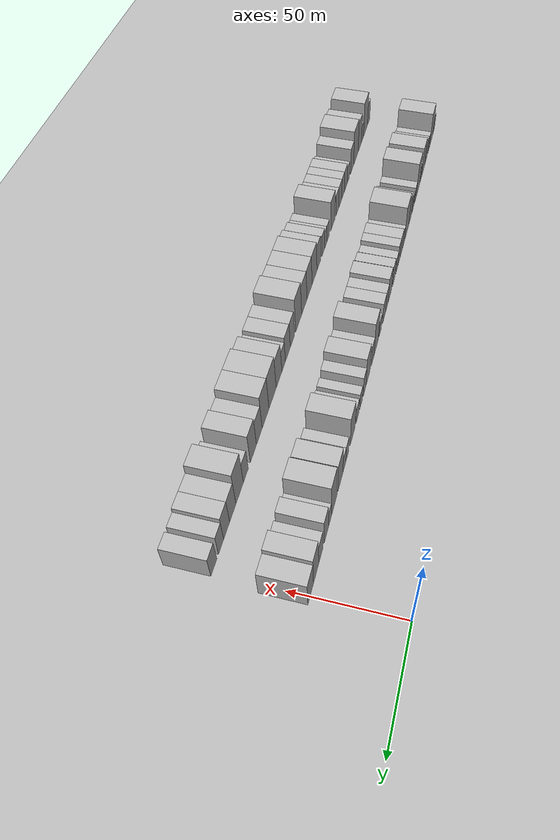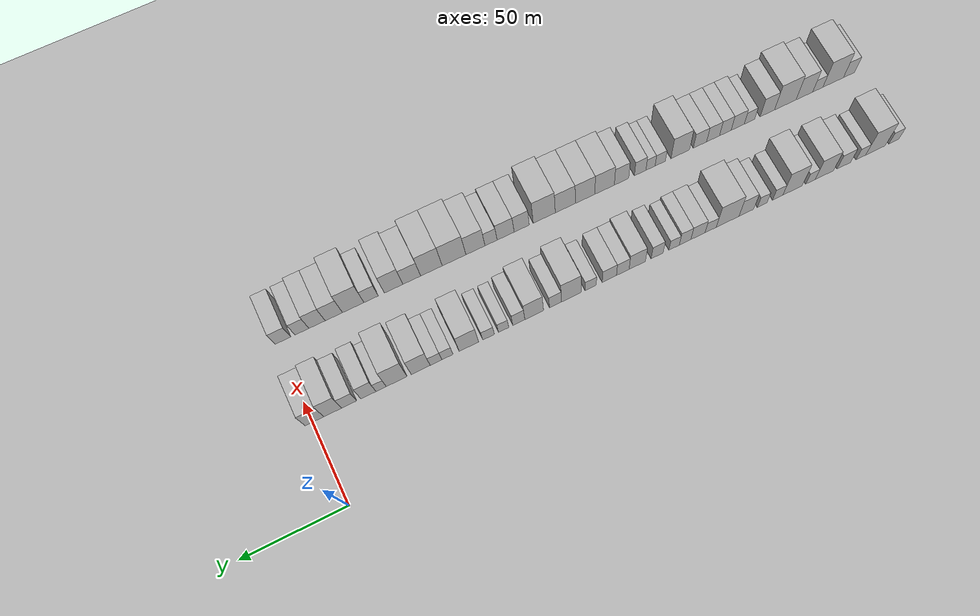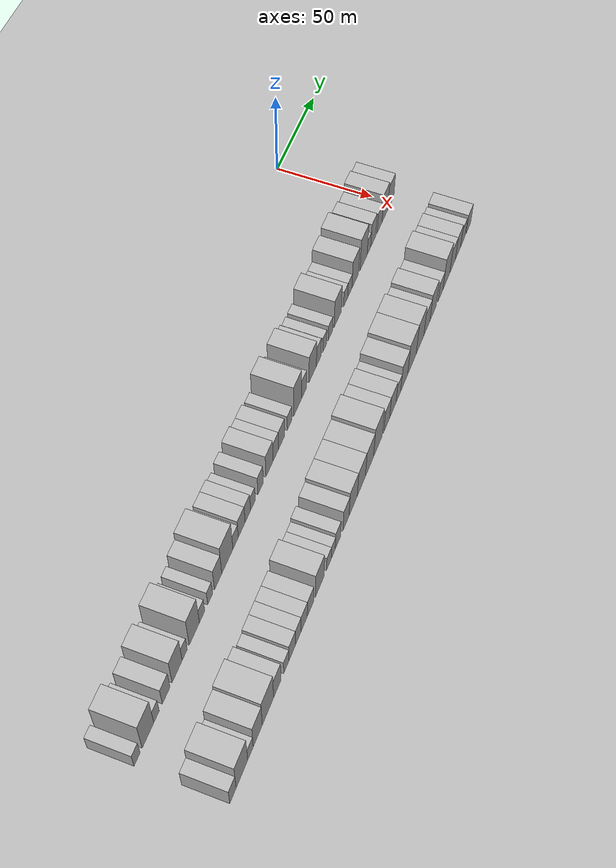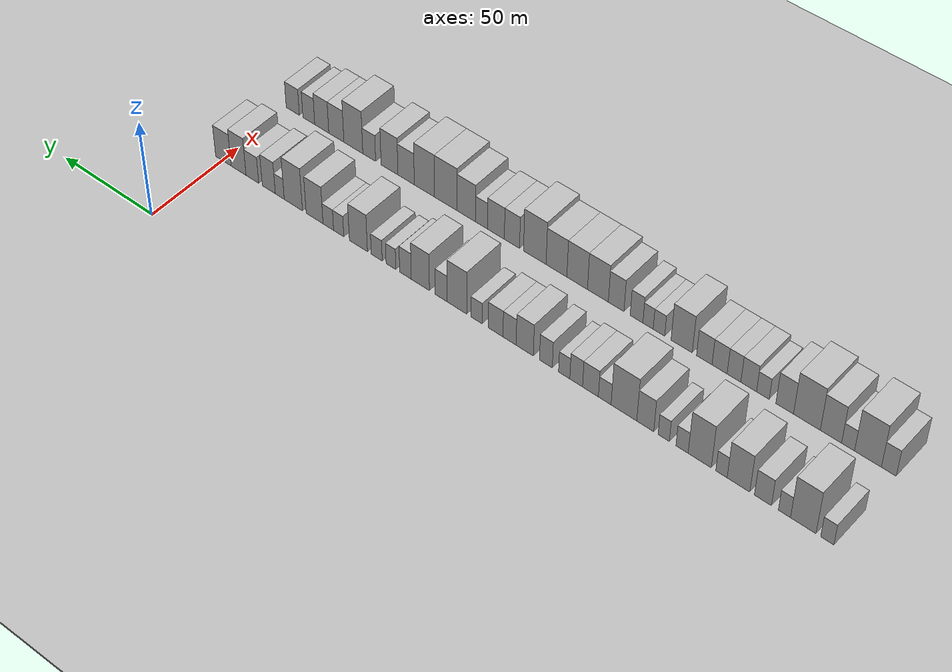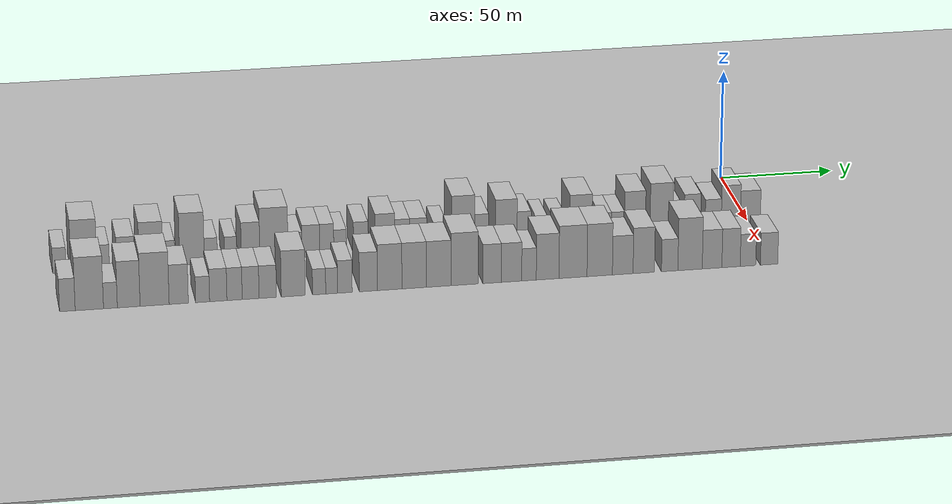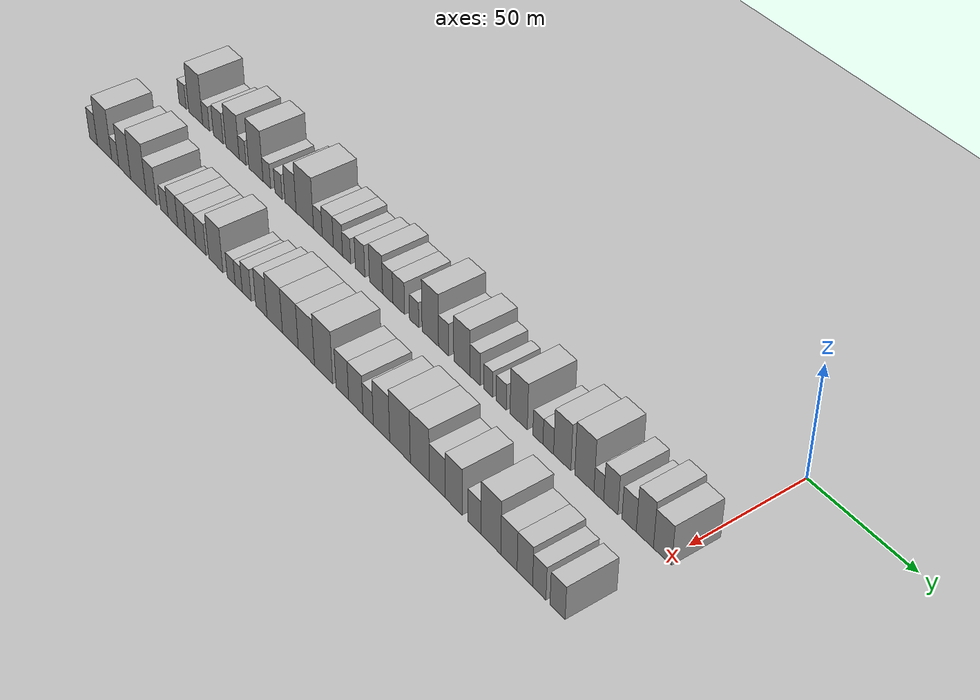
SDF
<sdf version="1.6">
 <world name="default">
  <include><name>ground_plane_1</name><uri>model://HANNAS_ground_plane</uri></include>
  <include>
   <name>ground_plane_2</name>
   <uri>model://HANNAS_ground_plane</uri>
   <pose>100 0 0  0 0 0</pose>
  </include>
  <model name="building_1">
   <static>1</static>
   <pose>50.0000 -297.1973 0 0.000000 0.000000 0.000000</pose>
   <link name="link">
    <pose>0 0 6.00 0 0 0</pose>
    <collision name="collision"><geometry><box><size>20.0000 5.6054 12.0000</size></box></geometry></collision>
    <visual name="visual">
     <cast_shadows>0</cast_shadows>
     <geometry><box><size>20.0000 5.6054 12.0000</size></box></geometry>
     <material>
      <script>
       <uri>model://HANNAS_wall/materials/scripts</uri>
       <uri>model://HANNAS_wall/materials/textures</uri>
       <name>vrc/HANNAS_wall</name>
      </script>
     </material>
    </visual>
   </link>
  </model>
  <model name="building_2">
   <static>1</static>
   <pose>50.0000 -286.9371 0 0.000000 0.000000 0.000000</pose>
   <link name="link">
    <pose>0 0 12.00 0 0 0</pose>
    <collision name="collision"><geometry><box><size>20.0000 10.9151 24.0000</size></box></geometry></collision>
    <visual name="visual">
     <cast_shadows>0</cast_shadows>
     <geometry><box><size>20.0000 10.9151 24.0000</size></box></geometry>
     <material>
      <script>
       <uri>model://HANNAS_wall/materials/scripts</uri>
       <uri>model://HANNAS_wall/materials/textures</uri>
       <name>vrc/HANNAS_wall</name>
      </script>
     </material>
    </visual>
   </link>
  </model>
  <model name="building_3">
   <static>1</static>
   <pose>50.0000 -278.8624 0 0.000000 0.000000 0.000000</pose>
   <link name="link">
    <pose>0 0 6.00 0 0 0</pose>
    <collision name="collision"><geometry><box><size>20.0000 5.2342 12.0000</size></box></geometry></collision>
    <visual name="visual">
     <cast_shadows>0</cast_shadows>
     <geometry><box><size>20.0000 5.2342 12.0000</size></box></geometry>
     <material>
      <script>
       <uri>model://HANNAS_wall/materials/scripts</uri>
       <uri>model://HANNAS_wall/materials/textures</uri>
       <name>vrc/HANNAS_wall</name>
      </script>
     </material>
    </visual>
   </link>
  </model>
  <model name="building_4">
   <static>1</static>
   <pose>50.0000 -269.5270 0 0.000000 0.000000 0.000000</pose>
   <link name="link">
    <pose>0 0 7.50 0 0 0</pose>
    <collision name="collision"><geometry><box><size>20.0000 7.4367 15.0000</size></box></geometry></collision>
    <visual name="visual">
     <cast_shadows>0</cast_shadows>
     <geometry><box><size>20.0000 7.4367 15.0000</size></box></geometry>
     <material>
      <script>
       <uri>model://HANNAS_wall/materials/scripts</uri>
       <uri>model://HANNAS_wall/materials/textures</uri>
       <name>vrc/HANNAS_wall</name>
      </script>
     </material>
    </visual>
   </link>
  </model>
  <model name="building_5">
   <static>1</static>
   <pose>50.0000 -258.8061 0 0.000000 0.000000 0.000000</pose>
   <link name="link">
    <pose>0 0 10.50 0 0 0</pose>
    <collision name="collision"><geometry><box><size>20.0000 10.0052 21.0000</size></box></geometry></collision>
    <visual name="visual">
     <cast_shadows>0</cast_shadows>
     <geometry><box><size>20.0000 10.0052 21.0000</size></box></geometry>
     <material>
      <script>
       <uri>model://HANNAS_wall/materials/scripts</uri>
       <uri>model://HANNAS_wall/materials/textures</uri>
       <name>vrc/HANNAS_wall</name>
      </script>
     </material>
    </visual>
   </link>
  </model>
  <model name="building_6">
   <static>1</static>
   <pose>50.0000 -251.2828 0 0.000000 0.000000 0.000000</pose>
   <link name="link">
    <pose>0 0 6.00 0 0 0</pose>
    <collision name="collision"><geometry><box><size>20.0000 5.0414 12.0000</size></box></geometry></collision>
    <visual name="visual">
     <cast_shadows>0</cast_shadows>
     <geometry><box><size>20.0000 5.0414 12.0000</size></box></geometry>
     <material>
      <script>
       <uri>model://HANNAS_wall/materials/scripts</uri>
       <uri>model://HANNAS_wall/materials/textures</uri>
       <name>vrc/HANNAS_wall</name>
      </script>
     </material>
    </visual>
   </link>
  </model>
  <model name="building_7">
   <static>1</static>
   <pose>50.0000 -241.5518 0 0.000000 0.000000 0.000000</pose>
   <link name="link">
    <pose>0 0 12.00 0 0 0</pose>
    <collision name="collision"><geometry><box><size>20.0000 10.4205 24.0000</size></box></geometry></collision>
    <visual name="visual">
     <cast_shadows>0</cast_shadows>
     <geometry><box><size>20.0000 10.4205 24.0000</size></box></geometry>
     <material>
      <script>
       <uri>model://HANNAS_wall/materials/scripts</uri>
       <uri>model://HANNAS_wall/materials/textures</uri>
       <name>vrc/HANNAS_wall</name>
      </script>
     </material>
    </visual>
   </link>
  </model>
  <model name="building_8">
   <static>1</static>
   <pose>50.0000 -233.5852 0 0.000000 0.000000 0.000000</pose>
   <link name="link">
    <pose>0 0 6.00 0 0 0</pose>
    <collision name="collision"><geometry><box><size>20.0000 5.5127 12.0000</size></box></geometry></collision>
    <visual name="visual">
     <cast_shadows>0</cast_shadows>
     <geometry><box><size>20.0000 5.5127 12.0000</size></box></geometry>
     <material>
      <script>
       <uri>model://HANNAS_wall/materials/scripts</uri>
       <uri>model://HANNAS_wall/materials/textures</uri>
       <name>vrc/HANNAS_wall</name>
      </script>
     </material>
    </visual>
   </link>
  </model>
  <model name="building_9">
   <static>1</static>
   <pose>50.0000 -225.2683 0 0.000000 0.000000 0.000000</pose>
   <link name="link">
    <pose>0 0 6.00 0 0 0</pose>
    <collision name="collision"><geometry><box><size>20.0000 5.1211 12.0000</size></box></geometry></collision>
    <visual name="visual">
     <cast_shadows>0</cast_shadows>
     <geometry><box><size>20.0000 5.1211 12.0000</size></box></geometry>
     <material>
      <script>
       <uri>model://HANNAS_wall/materials/scripts</uri>
       <uri>model://HANNAS_wall/materials/textures</uri>
       <name>vrc/HANNAS_wall</name>
      </script>
     </material>
    </visual>
   </link>
  </model>
  <model name="building_10">
   <static>1</static>
   <pose>50.0000 -216.8005 0 0.000000 0.000000 0.000000</pose>
   <link name="link">
    <pose>0 0 9.00 0 0 0</pose>
    <collision name="collision"><geometry><box><size>20.0000 7.8146 18.0000</size></box></geometry></collision>
    <visual name="visual">
     <cast_shadows>0</cast_shadows>
     <geometry><box><size>20.0000 7.8146 18.0000</size></box></geometry>
     <material>
      <script>
       <uri>model://HANNAS_wall/materials/scripts</uri>
       <uri>model://HANNAS_wall/materials/textures</uri>
       <name>vrc/HANNAS_wall</name>
      </script>
     </material>
    </visual>
   </link>
  </model>
  <model name="building_11">
   <static>1</static>
   <pose>50.0000 -206.9055 0 0.000000 0.000000 0.000000</pose>
   <link name="link">
    <pose>0 0 12.00 0 0 0</pose>
    <collision name="collision"><geometry><box><size>20.0000 11.9755 24.0000</size></box></geometry></collision>
    <visual name="visual">
     <cast_shadows>0</cast_shadows>
     <geometry><box><size>20.0000 11.9755 24.0000</size></box></geometry>
     <material>
      <script>
       <uri>model://HANNAS_wall/materials/scripts</uri>
       <uri>model://HANNAS_wall/materials/textures</uri>
       <name>vrc/HANNAS_wall</name>
      </script>
     </material>
    </visual>
   </link>
  </model>
  <model name="building_12">
   <static>1</static>
   <pose>50.0000 -197.9457 0 0.000000 0.000000 0.000000</pose>
   <link name="link">
    <pose>0 0 6.00 0 0 0</pose>
    <collision name="collision"><geometry><box><size>20.0000 5.9440 12.0000</size></box></geometry></collision>
    <visual name="visual">
     <cast_shadows>0</cast_shadows>
     <geometry><box><size>20.0000 5.9440 12.0000</size></box></geometry>
     <material>
      <script>
       <uri>model://HANNAS_wall/materials/scripts</uri>
       <uri>model://HANNAS_wall/materials/textures</uri>
       <name>vrc/HANNAS_wall</name>
      </script>
     </material>
    </visual>
   </link>
  </model>
  <model name="building_13">
   <static>1</static>
   <pose>50.0000 -191.2312 0 0.000000 0.000000 0.000000</pose>
   <link name="link">
    <pose>0 0 7.50 0 0 0</pose>
    <collision name="collision"><geometry><box><size>20.0000 7.4850 15.0000</size></box></geometry></collision>
    <visual name="visual">
     <cast_shadows>0</cast_shadows>
     <geometry><box><size>20.0000 7.4850 15.0000</size></box></geometry>
     <material>
      <script>
       <uri>model://HANNAS_wall/materials/scripts</uri>
       <uri>model://HANNAS_wall/materials/textures</uri>
       <name>vrc/HANNAS_wall</name>
      </script>
     </material>
    </visual>
   </link>
  </model>
  <model name="building_14">
   <static>1</static>
   <pose>50.0000 -184.4612 0 0.000000 0.000000 0.000000</pose>
   <link name="link">
    <pose>0 0 7.50 0 0 0</pose>
    <collision name="collision"><geometry><box><size>20.0000 6.0550 15.0000</size></box></geometry></collision>
    <visual name="visual">
     <cast_shadows>0</cast_shadows>
     <geometry><box><size>20.0000 6.0550 15.0000</size></box></geometry>
     <material>
      <script>
       <uri>model://HANNAS_wall/materials/scripts</uri>
       <uri>model://HANNAS_wall/materials/textures</uri>
       <name>vrc/HANNAS_wall</name>
      </script>
     </material>
    </visual>
   </link>
  </model>
  <model name="building_15">
   <static>1</static>
   <pose>50.0000 -178.7325 0 0.000000 0.000000 0.000000</pose>
   <link name="link">
    <pose>0 0 6.00 0 0 0</pose>
    <collision name="collision"><geometry><box><size>20.0000 5.4024 12.0000</size></box></geometry></collision>
    <visual name="visual">
     <cast_shadows>0</cast_shadows>
     <geometry><box><size>20.0000 5.4024 12.0000</size></box></geometry>
     <material>
      <script>
       <uri>model://HANNAS_wall/materials/scripts</uri>
       <uri>model://HANNAS_wall/materials/textures</uri>
       <name>vrc/HANNAS_wall</name>
      </script>
     </material>
    </visual>
   </link>
  </model>
  <model name="building_16">
   <static>1</static>
   <pose>50.0000 -169.9344 0 0.000000 0.000000 0.000000</pose>
   <link name="link">
    <pose>0 0 7.50 0 0 0</pose>
    <collision name="collision"><geometry><box><size>20.0000 6.1939 15.0000</size></box></geometry></collision>
    <visual name="visual">
     <cast_shadows>0</cast_shadows>
     <geometry><box><size>20.0000 6.1939 15.0000</size></box></geometry>
     <material>
      <script>
       <uri>model://HANNAS_wall/materials/scripts</uri>
       <uri>model://HANNAS_wall/materials/textures</uri>
       <name>vrc/HANNAS_wall</name>
      </script>
     </material>
    </visual>
   </link>
  </model>
  <model name="building_17">
   <static>1</static>
   <pose>50.0000 -159.6488 0 0.000000 0.000000 0.000000</pose>
   <link name="link">
    <pose>0 0 9.00 0 0 0</pose>
    <collision name="collision"><geometry><box><size>20.0000 8.3773 18.0000</size></box></geometry></collision>
    <visual name="visual">
     <cast_shadows>0</cast_shadows>
     <geometry><box><size>20.0000 8.3773 18.0000</size></box></geometry>
     <material>
      <script>
       <uri>model://HANNAS_wall/materials/scripts</uri>
       <uri>model://HANNAS_wall/materials/textures</uri>
       <name>vrc/HANNAS_wall</name>
      </script>
     </material>
    </visual>
   </link>
  </model>
  <model name="building_18">
   <static>1</static>
   <pose>50.0000 -152.2264 0 0.000000 0.000000 0.000000</pose>
   <link name="link">
    <pose>0 0 7.50 0 0 0</pose>
    <collision name="collision"><geometry><box><size>20.0000 6.4675 15.0000</size></box></geometry></collision>
    <visual name="visual">
     <cast_shadows>0</cast_shadows>
     <geometry><box><size>20.0000 6.4675 15.0000</size></box></geometry>
     <material>
      <script>
       <uri>model://HANNAS_wall/materials/scripts</uri>
       <uri>model://HANNAS_wall/materials/textures</uri>
       <name>vrc/HANNAS_wall</name>
      </script>
     </material>
    </visual>
   </link>
  </model>
  <model name="building_19">
   <static>1</static>
   <pose>50.0000 -145.3446 0 0.000000 0.000000 0.000000</pose>
   <link name="link">
    <pose>0 0 7.50 0 0 0</pose>
    <collision name="collision"><geometry><box><size>20.0000 7.2962 15.0000</size></box></geometry></collision>
    <visual name="visual">
     <cast_shadows>0</cast_shadows>
     <geometry><box><size>20.0000 7.2962 15.0000</size></box></geometry>
     <material>
      <script>
       <uri>model://HANNAS_wall/materials/scripts</uri>
       <uri>model://HANNAS_wall/materials/textures</uri>
       <name>vrc/HANNAS_wall</name>
      </script>
     </material>
    </visual>
   </link>
  </model>
  <model name="building_20">
   <static>1</static>
   <pose>50.0000 -135.8455 0 0.000000 0.000000 0.000000</pose>
   <link name="link">
    <pose>0 0 6.00 0 0 0</pose>
    <collision name="collision"><geometry><box><size>20.0000 5.7019 12.0000</size></box></geometry></collision>
    <visual name="visual">
     <cast_shadows>0</cast_shadows>
     <geometry><box><size>20.0000 5.7019 12.0000</size></box></geometry>
     <material>
      <script>
       <uri>model://HANNAS_wall/materials/scripts</uri>
       <uri>model://HANNAS_wall/materials/textures</uri>
       <name>vrc/HANNAS_wall</name>
      </script>
     </material>
    </visual>
   </link>
  </model>
  <model name="building_21">
   <static>1</static>
   <pose>50.0000 -126.0394 0 0.000000 0.000000 0.000000</pose>
   <link name="link">
    <pose>0 0 12.00 0 0 0</pose>
    <collision name="collision"><geometry><box><size>20.0000 9.9102 24.0000</size></box></geometry></collision>
    <visual name="visual">
     <cast_shadows>0</cast_shadows>
     <geometry><box><size>20.0000 9.9102 24.0000</size></box></geometry>
     <material>
      <script>
       <uri>model://HANNAS_wall/materials/scripts</uri>
       <uri>model://HANNAS_wall/materials/textures</uri>
       <name>vrc/HANNAS_wall</name>
      </script>
     </material>
    </visual>
   </link>
  </model>
  <model name="building_22">
   <static>1</static>
   <pose>50.0000 -118.0736 0 0.000000 0.000000 0.000000</pose>
   <link name="link">
    <pose>0 0 7.50 0 0 0</pose>
    <collision name="collision"><geometry><box><size>20.0000 6.0215 15.0000</size></box></geometry></collision>
    <visual name="visual">
     <cast_shadows>0</cast_shadows>
     <geometry><box><size>20.0000 6.0215 15.0000</size></box></geometry>
     <material>
      <script>
       <uri>model://HANNAS_wall/materials/scripts</uri>
       <uri>model://HANNAS_wall/materials/textures</uri>
       <name>vrc/HANNAS_wall</name>
      </script>
     </material>
    </visual>
   </link>
  </model>
  <model name="building_23">
   <static>1</static>
   <pose>50.0000 -107.4133 0 0.000000 0.000000 0.000000</pose>
   <link name="link">
    <pose>0 0 10.50 0 0 0</pose>
    <collision name="collision"><geometry><box><size>20.0000 9.2990 21.0000</size></box></geometry></collision>
    <visual name="visual">
     <cast_shadows>0</cast_shadows>
     <geometry><box><size>20.0000 9.2990 21.0000</size></box></geometry>
     <material>
      <script>
       <uri>model://HANNAS_wall/materials/scripts</uri>
       <uri>model://HANNAS_wall/materials/textures</uri>
       <name>vrc/HANNAS_wall</name>
      </script>
     </material>
    </visual>
   </link>
  </model>
  <model name="building_24">
   <static>1</static>
   <pose>50.0000 -99.7550 0 0.000000 0.000000 0.000000</pose>
   <link name="link">
    <pose>0 0 7.50 0 0 0</pose>
    <collision name="collision"><geometry><box><size>20.0000 6.0176 15.0000</size></box></geometry></collision>
    <visual name="visual">
     <cast_shadows>0</cast_shadows>
     <geometry><box><size>20.0000 6.0176 15.0000</size></box></geometry>
     <material>
      <script>
       <uri>model://HANNAS_wall/materials/scripts</uri>
       <uri>model://HANNAS_wall/materials/textures</uri>
       <name>vrc/HANNAS_wall</name>
      </script>
     </material>
    </visual>
   </link>
  </model>
  <model name="building_25">
   <static>1</static>
   <pose>50.0000 -92.1950 0 0.000000 0.000000 0.000000</pose>
   <link name="link">
    <pose>0 0 6.00 0 0 0</pose>
    <collision name="collision"><geometry><box><size>20.0000 5.1025 12.0000</size></box></geometry></collision>
    <visual name="visual">
     <cast_shadows>0</cast_shadows>
     <geometry><box><size>20.0000 5.1025 12.0000</size></box></geometry>
     <material>
      <script>
       <uri>model://HANNAS_wall/materials/scripts</uri>
       <uri>model://HANNAS_wall/materials/textures</uri>
       <name>vrc/HANNAS_wall</name>
      </script>
     </material>
    </visual>
   </link>
  </model>
  <model name="building_26">
   <static>1</static>
   <pose>50.0000 -84.7635 0 0.000000 0.000000 0.000000</pose>
   <link name="link">
    <pose>0 0 6.00 0 0 0</pose>
    <collision name="collision"><geometry><box><size>20.0000 5.7605 12.0000</size></box></geometry></collision>
    <visual name="visual">
     <cast_shadows>0</cast_shadows>
     <geometry><box><size>20.0000 5.7605 12.0000</size></box></geometry>
     <material>
      <script>
       <uri>model://HANNAS_wall/materials/scripts</uri>
       <uri>model://HANNAS_wall/materials/textures</uri>
       <name>vrc/HANNAS_wall</name>
      </script>
     </material>
    </visual>
   </link>
  </model>
  <model name="building_27">
   <static>1</static>
   <pose>50.0000 -75.1036 0 0.000000 0.000000 0.000000</pose>
   <link name="link">
    <pose>0 0 10.50 0 0 0</pose>
    <collision name="collision"><geometry><box><size>20.0000 9.5592 21.0000</size></box></geometry></collision>
    <visual name="visual">
     <cast_shadows>0</cast_shadows>
     <geometry><box><size>20.0000 9.5592 21.0000</size></box></geometry>
     <material>
      <script>
       <uri>model://HANNAS_wall/materials/scripts</uri>
       <uri>model://HANNAS_wall/materials/textures</uri>
       <name>vrc/HANNAS_wall</name>
      </script>
     </material>
    </visual>
   </link>
  </model>
  <model name="building_28">
   <static>1</static>
   <pose>50.0000 -64.5935 0 0.000000 0.000000 0.000000</pose>
   <link name="link">
    <pose>0 0 6.00 0 0 0</pose>
    <collision name="collision"><geometry><box><size>20.0000 5.4610 12.0000</size></box></geometry></collision>
    <visual name="visual">
     <cast_shadows>0</cast_shadows>
     <geometry><box><size>20.0000 5.4610 12.0000</size></box></geometry>
     <material>
      <script>
       <uri>model://HANNAS_wall/materials/scripts</uri>
       <uri>model://HANNAS_wall/materials/textures</uri>
       <name>vrc/HANNAS_wall</name>
      </script>
     </material>
    </visual>
   </link>
  </model>
  <model name="building_29">
   <static>1</static>
   <pose>50.0000 -59.0190 0 0.000000 0.000000 0.000000</pose>
   <link name="link">
    <pose>0 0 6.00 0 0 0</pose>
    <collision name="collision"><geometry><box><size>20.0000 5.6881 12.0000</size></box></geometry></collision>
    <visual name="visual">
     <cast_shadows>0</cast_shadows>
     <geometry><box><size>20.0000 5.6881 12.0000</size></box></geometry>
     <material>
      <script>
       <uri>model://HANNAS_wall/materials/scripts</uri>
       <uri>model://HANNAS_wall/materials/textures</uri>
       <name>vrc/HANNAS_wall</name>
      </script>
     </material>
    </visual>
   </link>
  </model>
  <model name="building_30">
   <static>1</static>
   <pose>50.0000 -51.6029 0 0.000000 0.000000 0.000000</pose>
   <link name="link">
    <pose>0 0 10.50 0 0 0</pose>
    <collision name="collision"><geometry><box><size>20.0000 9.1441 21.0000</size></box></geometry></collision>
    <visual name="visual">
     <cast_shadows>0</cast_shadows>
     <geometry><box><size>20.0000 9.1441 21.0000</size></box></geometry>
     <material>
      <script>
       <uri>model://HANNAS_wall/materials/scripts</uri>
       <uri>model://HANNAS_wall/materials/textures</uri>
       <name>vrc/HANNAS_wall</name>
      </script>
     </material>
    </visual>
   </link>
  </model>
  <model name="building_31">
   <static>1</static>
   <pose>50.0000 -40.0426 0 0.000000 0.000000 0.000000</pose>
   <link name="link">
    <pose>0 0 12.00 0 0 0</pose>
    <collision name="collision"><geometry><box><size>20.0000 9.9766 24.0000</size></box></geometry></collision>
    <visual name="visual">
     <cast_shadows>0</cast_shadows>
     <geometry><box><size>20.0000 9.9766 24.0000</size></box></geometry>
     <material>
      <script>
       <uri>model://HANNAS_wall/materials/scripts</uri>
       <uri>model://HANNAS_wall/materials/textures</uri>
       <name>vrc/HANNAS_wall</name>
      </script>
     </material>
    </visual>
   </link>
  </model>
  <model name="building_32">
   <static>1</static>
   <pose>50.0000 -32.5910 0 0.000000 0.000000 0.000000</pose>
   <link name="link">
    <pose>0 0 6.00 0 0 0</pose>
    <collision name="collision"><geometry><box><size>20.0000 4.9266 12.0000</size></box></geometry></collision>
    <visual name="visual">
     <cast_shadows>0</cast_shadows>
     <geometry><box><size>20.0000 4.9266 12.0000</size></box></geometry>
     <material>
      <script>
       <uri>model://HANNAS_wall/materials/scripts</uri>
       <uri>model://HANNAS_wall/materials/textures</uri>
       <name>vrc/HANNAS_wall</name>
      </script>
     </material>
    </visual>
   </link>
  </model>
  <model name="building_33">
   <static>1</static>
   <pose>50.0000 -26.5214 0 0.000000 0.000000 0.000000</pose>
   <link name="link">
    <pose>0 0 9.00 0 0 0</pose>
    <collision name="collision"><geometry><box><size>20.0000 7.2126 18.0000</size></box></geometry></collision>
    <visual name="visual">
     <cast_shadows>0</cast_shadows>
     <geometry><box><size>20.0000 7.2126 18.0000</size></box></geometry>
     <material>
      <script>
       <uri>model://HANNAS_wall/materials/scripts</uri>
       <uri>model://HANNAS_wall/materials/textures</uri>
       <name>vrc/HANNAS_wall</name>
      </script>
     </material>
    </visual>
   </link>
  </model>
  <model name="building_34">
   <static>1</static>
   <pose>50.0000 -17.3667 0 0.000000 0.000000 0.000000</pose>
   <link name="link">
    <pose>0 0 7.50 0 0 0</pose>
    <collision name="collision"><geometry><box><size>20.0000 7.0967 15.0000</size></box></geometry></collision>
    <visual name="visual">
     <cast_shadows>0</cast_shadows>
     <geometry><box><size>20.0000 7.0967 15.0000</size></box></geometry>
     <material>
      <script>
       <uri>model://HANNAS_wall/materials/scripts</uri>
       <uri>model://HANNAS_wall/materials/textures</uri>
       <name>vrc/HANNAS_wall</name>
      </script>
     </material>
    </visual>
   </link>
  </model>
  <model name="building_35">
   <static>1</static>
   <pose>50.0000 -9.6184 0 0.000000 0.000000 0.000000</pose>
   <link name="link">
    <pose>0 0 10.50 0 0 0</pose>
    <collision name="collision"><geometry><box><size>20.0000 8.4000 21.0000</size></box></geometry></collision>
    <visual name="visual">
     <cast_shadows>0</cast_shadows>
     <geometry><box><size>20.0000 8.4000 21.0000</size></box></geometry>
     <material>
      <script>
       <uri>model://HANNAS_wall/materials/scripts</uri>
       <uri>model://HANNAS_wall/materials/textures</uri>
       <name>vrc/HANNAS_wall</name>
      </script>
     </material>
    </visual>
   </link>
  </model>
  <model name="building_36">
   <static>1</static>
   <pose>50.0000 -1.0348 0 0.000000 0.000000 0.000000</pose>
   <link name="link">
    <pose>0 0 9.00 0 0 0</pose>
    <collision name="collision"><geometry><box><size>20.0000 8.7670 18.0000</size></box></geometry></collision>
    <visual name="visual">
     <cast_shadows>0</cast_shadows>
     <geometry><box><size>20.0000 8.7670 18.0000</size></box></geometry>
     <material>
      <script>
       <uri>model://HANNAS_wall/materials/scripts</uri>
       <uri>model://HANNAS_wall/materials/textures</uri>
       <name>vrc/HANNAS_wall</name>
      </script>
     </material>
    </visual>
   </link>
  </model>
  <model name="building_73">
   <static>1</static>
   <pose>90.0000 -296.8129 0 0.000000 0.000000 0.000000</pose>
   <link name="link">
    <pose>0 0 7.50 0 0 0</pose>
    <collision name="collision"><geometry><box><size>20.0000 6.3741 15.0000</size></box></geometry></collision>
    <visual name="visual">
     <cast_shadows>0</cast_shadows>
     <geometry><box><size>20.0000 6.3741 15.0000</size></box></geometry>
     <material>
      <script>
       <uri>model://HANNAS_wall/materials/scripts</uri>
       <uri>model://HANNAS_wall/materials/textures</uri>
       <name>vrc/HANNAS_wall</name>
      </script>
     </material>
    </visual>
   </link>
  </model>
  <model name="building_74">
   <static>1</static>
   <pose>90.0000 -287.8326 0 0.000000 0.000000 0.000000</pose>
   <link name="link">
    <pose>0 0 12.00 0 0 0</pose>
    <collision name="collision"><geometry><box><size>20.0000 11.5865 24.0000</size></box></geometry></collision>
    <visual name="visual">
     <cast_shadows>0</cast_shadows>
     <geometry><box><size>20.0000 11.5865 24.0000</size></box></geometry>
     <material>
      <script>
       <uri>model://HANNAS_wall/materials/scripts</uri>
       <uri>model://HANNAS_wall/materials/textures</uri>
       <name>vrc/HANNAS_wall</name>
      </script>
     </material>
    </visual>
   </link>
  </model>
  <model name="building_75">
   <static>1</static>
   <pose>90.0000 -279.2050 0 0.000000 0.000000 0.000000</pose>
   <link name="link">
    <pose>0 0 6.00 0 0 0</pose>
    <collision name="collision"><geometry><box><size>20.0000 5.6688 12.0000</size></box></geometry></collision>
    <visual name="visual">
     <cast_shadows>0</cast_shadows>
     <geometry><box><size>20.0000 5.6688 12.0000</size></box></geometry>
     <material>
      <script>
       <uri>model://HANNAS_wall/materials/scripts</uri>
       <uri>model://HANNAS_wall/materials/textures</uri>
       <name>vrc/HANNAS_wall</name>
      </script>
     </material>
    </visual>
   </link>
  </model>
  <model name="building_76">
   <static>1</static>
   <pose>90.0000 -271.7044 0 0.000000 0.000000 0.000000</pose>
   <link name="link">
    <pose>0 0 10.50 0 0 0</pose>
    <collision name="collision"><geometry><box><size>20.0000 9.3324 21.0000</size></box></geometry></collision>
    <visual name="visual">
     <cast_shadows>0</cast_shadows>
     <geometry><box><size>20.0000 9.3324 21.0000</size></box></geometry>
     <material>
      <script>
       <uri>model://HANNAS_wall/materials/scripts</uri>
       <uri>model://HANNAS_wall/materials/textures</uri>
       <name>vrc/HANNAS_wall</name>
      </script>
     </material>
    </visual>
   </link>
  </model>
  <model name="building_77">
   <static>1</static>
   <pose>90.0000 -261.0698 0 0.000000 0.000000 0.000000</pose>
   <link name="link">
    <pose>0 0 12.00 0 0 0</pose>
    <collision name="collision"><geometry><box><size>20.0000 11.9368 24.0000</size></box></geometry></collision>
    <visual name="visual">
     <cast_shadows>0</cast_shadows>
     <geometry><box><size>20.0000 11.9368 24.0000</size></box></geometry>
     <material>
      <script>
       <uri>model://HANNAS_wall/materials/scripts</uri>
       <uri>model://HANNAS_wall/materials/textures</uri>
       <name>vrc/HANNAS_wall</name>
      </script>
     </material>
    </visual>
   </link>
  </model>
  <model name="building_78">
   <static>1</static>
   <pose>90.0000 -251.1423 0 0.000000 0.000000 0.000000</pose>
   <link name="link">
    <pose>0 0 9.00 0 0 0</pose>
    <collision name="collision"><geometry><box><size>20.0000 7.9182 18.0000</size></box></geometry></collision>
    <visual name="visual">
     <cast_shadows>0</cast_shadows>
     <geometry><box><size>20.0000 7.9182 18.0000</size></box></geometry>
     <material>
      <script>
       <uri>model://HANNAS_wall/materials/scripts</uri>
       <uri>model://HANNAS_wall/materials/textures</uri>
       <name>vrc/HANNAS_wall</name>
      </script>
     </material>
    </visual>
   </link>
  </model>
  <model name="building_79">
   <static>1</static>
   <pose>90.0000 -241.3103 0 0.000000 0.000000 0.000000</pose>
   <link name="link">
    <pose>0 0 6.00 0 0 0</pose>
    <collision name="collision"><geometry><box><size>20.0000 5.7458 12.0000</size></box></geometry></collision>
    <visual name="visual">
     <cast_shadows>0</cast_shadows>
     <geometry><box><size>20.0000 5.7458 12.0000</size></box></geometry>
     <material>
      <script>
       <uri>model://HANNAS_wall/materials/scripts</uri>
       <uri>model://HANNAS_wall/materials/textures</uri>
       <name>vrc/HANNAS_wall</name>
      </script>
     </material>
    </visual>
   </link>
  </model>
  <model name="building_80">
   <static>1</static>
   <pose>90.0000 -234.8576 0 0.000000 0.000000 0.000000</pose>
   <link name="link">
    <pose>0 0 7.50 0 0 0</pose>
    <collision name="collision"><geometry><box><size>20.0000 7.1597 15.0000</size></box></geometry></collision>
    <visual name="visual">
     <cast_shadows>0</cast_shadows>
     <geometry><box><size>20.0000 7.1597 15.0000</size></box></geometry>
     <material>
      <script>
       <uri>model://HANNAS_wall/materials/scripts</uri>
       <uri>model://HANNAS_wall/materials/textures</uri>
       <name>vrc/HANNAS_wall</name>
      </script>
     </material>
    </visual>
   </link>
  </model>
  <model name="building_81">
   <static>1</static>
   <pose>90.0000 -228.1220 0 0.000000 0.000000 0.000000</pose>
   <link name="link">
    <pose>0 0 7.50 0 0 0</pose>
    <collision name="collision"><geometry><box><size>20.0000 6.3115 15.0000</size></box></geometry></collision>
    <visual name="visual">
     <cast_shadows>0</cast_shadows>
     <geometry><box><size>20.0000 6.3115 15.0000</size></box></geometry>
     <material>
      <script>
       <uri>model://HANNAS_wall/materials/scripts</uri>
       <uri>model://HANNAS_wall/materials/textures</uri>
       <name>vrc/HANNAS_wall</name>
      </script>
     </material>
    </visual>
   </link>
  </model>
  <model name="building_82">
   <static>1</static>
   <pose>90.0000 -221.4721 0 0.000000 0.000000 0.000000</pose>
   <link name="link">
    <pose>0 0 7.50 0 0 0</pose>
    <collision name="collision"><geometry><box><size>20.0000 6.9882 15.0000</size></box></geometry></collision>
    <visual name="visual">
     <cast_shadows>0</cast_shadows>
     <geometry><box><size>20.0000 6.9882 15.0000</size></box></geometry>
     <material>
      <script>
       <uri>model://HANNAS_wall/materials/scripts</uri>
       <uri>model://HANNAS_wall/materials/textures</uri>
       <name>vrc/HANNAS_wall</name>
      </script>
     </material>
    </visual>
   </link>
  </model>
  <model name="building_83">
   <static>1</static>
   <pose>90.0000 -214.3779 0 0.000000 0.000000 0.000000</pose>
   <link name="link">
    <pose>0 0 7.50 0 0 0</pose>
    <collision name="collision"><geometry><box><size>20.0000 7.2004 15.0000</size></box></geometry></collision>
    <visual name="visual">
     <cast_shadows>0</cast_shadows>
     <geometry><box><size>20.0000 7.2004 15.0000</size></box></geometry>
     <material>
      <script>
       <uri>model://HANNAS_wall/materials/scripts</uri>
       <uri>model://HANNAS_wall/materials/textures</uri>
       <name>vrc/HANNAS_wall</name>
      </script>
     </material>
    </visual>
   </link>
  </model>
  <model name="building_84">
   <static>1</static>
   <pose>90.0000 -203.7743 0 0.000000 0.000000 0.000000</pose>
   <link name="link">
    <pose>0 0 10.50 0 0 0</pose>
    <collision name="collision"><geometry><box><size>20.0000 10.0068 21.0000</size></box></geometry></collision>
    <visual name="visual">
     <cast_shadows>0</cast_shadows>
     <geometry><box><size>20.0000 10.0068 21.0000</size></box></geometry>
     <material>
      <script>
       <uri>model://HANNAS_wall/materials/scripts</uri>
       <uri>model://HANNAS_wall/materials/textures</uri>
       <name>vrc/HANNAS_wall</name>
      </script>
     </material>
    </visual>
   </link>
  </model>
  <model name="building_85">
   <static>1</static>
   <pose>90.0000 -193.0289 0 0.000000 0.000000 0.000000</pose>
   <link name="link">
    <pose>0 0 6.00 0 0 0</pose>
    <collision name="collision"><geometry><box><size>20.0000 5.4839 12.0000</size></box></geometry></collision>
    <visual name="visual">
     <cast_shadows>0</cast_shadows>
     <geometry><box><size>20.0000 5.4839 12.0000</size></box></geometry>
     <material>
      <script>
       <uri>model://HANNAS_wall/materials/scripts</uri>
       <uri>model://HANNAS_wall/materials/textures</uri>
       <name>vrc/HANNAS_wall</name>
      </script>
     </material>
    </visual>
   </link>
  </model>
  <model name="building_86">
   <static>1</static>
   <pose>90.0000 -187.8375 0 0.000000 0.000000 0.000000</pose>
   <link name="link">
    <pose>0 0 6.00 0 0 0</pose>
    <collision name="collision"><geometry><box><size>20.0000 4.8991 12.0000</size></box></geometry></collision>
    <visual name="visual">
     <cast_shadows>0</cast_shadows>
     <geometry><box><size>20.0000 4.8991 12.0000</size></box></geometry>
     <material>
      <script>
       <uri>model://HANNAS_wall/materials/scripts</uri>
       <uri>model://HANNAS_wall/materials/textures</uri>
       <name>vrc/HANNAS_wall</name>
      </script>
     </material>
    </visual>
   </link>
  </model>
  <model name="building_87">
   <static>1</static>
   <pose>90.0000 -182.3242 0 0.000000 0.000000 0.000000</pose>
   <link name="link">
    <pose>0 0 7.50 0 0 0</pose>
    <collision name="collision"><geometry><box><size>20.0000 6.1274 15.0000</size></box></geometry></collision>
    <visual name="visual">
     <cast_shadows>0</cast_shadows>
     <geometry><box><size>20.0000 6.1274 15.0000</size></box></geometry>
     <material>
      <script>
       <uri>model://HANNAS_wall/materials/scripts</uri>
       <uri>model://HANNAS_wall/materials/textures</uri>
       <name>vrc/HANNAS_wall</name>
      </script>
     </material>
    </visual>
   </link>
  </model>
  <model name="building_88">
   <static>1</static>
   <pose>90.0000 -172.4756 0 0.000000 0.000000 0.000000</pose>
   <link name="link">
    <pose>0 0 9.00 0 0 0</pose>
    <collision name="collision"><geometry><box><size>20.0000 7.5699 18.0000</size></box></geometry></collision>
    <visual name="visual">
     <cast_shadows>0</cast_shadows>
     <geometry><box><size>20.0000 7.5699 18.0000</size></box></geometry>
     <material>
      <script>
       <uri>model://HANNAS_wall/materials/scripts</uri>
       <uri>model://HANNAS_wall/materials/textures</uri>
       <name>vrc/HANNAS_wall</name>
      </script>
     </material>
    </visual>
   </link>
  </model>
  <model name="building_89">
   <static>1</static>
   <pose>90.0000 -163.5721 0 0.000000 0.000000 0.000000</pose>
   <link name="link">
    <pose>0 0 10.50 0 0 0</pose>
    <collision name="collision"><geometry><box><size>20.0000 10.2371 21.0000</size></box></geometry></collision>
    <visual name="visual">
     <cast_shadows>0</cast_shadows>
     <geometry><box><size>20.0000 10.2371 21.0000</size></box></geometry>
     <material>
      <script>
       <uri>model://HANNAS_wall/materials/scripts</uri>
       <uri>model://HANNAS_wall/materials/textures</uri>
       <name>vrc/HANNAS_wall</name>
      </script>
     </material>
    </visual>
   </link>
  </model>
  <model name="building_90">
   <static>1</static>
   <pose>90.0000 -153.3421 0 0.000000 0.000000 0.000000</pose>
   <link name="link">
    <pose>0 0 10.50 0 0 0</pose>
    <collision name="collision"><geometry><box><size>20.0000 10.2229 21.0000</size></box></geometry></collision>
    <visual name="visual">
     <cast_shadows>0</cast_shadows>
     <geometry><box><size>20.0000 10.2229 21.0000</size></box></geometry>
     <material>
      <script>
       <uri>model://HANNAS_wall/materials/scripts</uri>
       <uri>model://HANNAS_wall/materials/textures</uri>
       <name>vrc/HANNAS_wall</name>
      </script>
     </material>
    </visual>
   </link>
  </model>
  <model name="building_91">
   <static>1</static>
   <pose>90.0000 -143.0441 0 0.000000 0.000000 0.000000</pose>
   <link name="link">
    <pose>0 0 10.50 0 0 0</pose>
    <collision name="collision"><geometry><box><size>20.0000 10.3731 21.0000</size></box></geometry></collision>
    <visual name="visual">
     <cast_shadows>0</cast_shadows>
     <geometry><box><size>20.0000 10.3731 21.0000</size></box></geometry>
     <material>
      <script>
       <uri>model://HANNAS_wall/materials/scripts</uri>
       <uri>model://HANNAS_wall/materials/textures</uri>
       <name>vrc/HANNAS_wall</name>
      </script>
     </material>
    </visual>
   </link>
  </model>
  <model name="building_92">
   <static>1</static>
   <pose>90.0000 -132.1641 0 0.000000 0.000000 0.000000</pose>
   <link name="link">
    <pose>0 0 12.00 0 0 0</pose>
    <collision name="collision"><geometry><box><size>20.0000 11.3870 24.0000</size></box></geometry></collision>
    <visual name="visual">
     <cast_shadows>0</cast_shadows>
     <geometry><box><size>20.0000 11.3870 24.0000</size></box></geometry>
     <material>
      <script>
       <uri>model://HANNAS_wall/materials/scripts</uri>
       <uri>model://HANNAS_wall/materials/textures</uri>
       <name>vrc/HANNAS_wall</name>
      </script>
     </material>
    </visual>
   </link>
  </model>
  <model name="building_93">
   <static>1</static>
   <pose>90.0000 -120.5858 0 0.000000 0.000000 0.000000</pose>
   <link name="link">
    <pose>0 0 9.00 0 0 0</pose>
    <collision name="collision"><geometry><box><size>20.0000 7.7696 18.0000</size></box></geometry></collision>
    <visual name="visual">
     <cast_shadows>0</cast_shadows>
     <geometry><box><size>20.0000 7.7696 18.0000</size></box></geometry>
     <material>
      <script>
       <uri>model://HANNAS_wall/materials/scripts</uri>
       <uri>model://HANNAS_wall/materials/textures</uri>
       <name>vrc/HANNAS_wall</name>
      </script>
     </material>
    </visual>
   </link>
  </model>
  <model name="building_94">
   <static>1</static>
   <pose>90.0000 -112.3656 0 0.000000 0.000000 0.000000</pose>
   <link name="link">
    <pose>0 0 9.00 0 0 0</pose>
    <collision name="collision"><geometry><box><size>20.0000 8.6708 18.0000</size></box></geometry></collision>
    <visual name="visual">
     <cast_shadows>0</cast_shadows>
     <geometry><box><size>20.0000 8.6708 18.0000</size></box></geometry>
     <material>
      <script>
       <uri>model://HANNAS_wall/materials/scripts</uri>
       <uri>model://HANNAS_wall/materials/textures</uri>
       <name>vrc/HANNAS_wall</name>
      </script>
     </material>
    </visual>
   </link>
  </model>
  <model name="building_95">
   <static>1</static>
   <pose>90.0000 -104.9579 0 0.000000 0.000000 0.000000</pose>
   <link name="link">
    <pose>0 0 7.50 0 0 0</pose>
    <collision name="collision"><geometry><box><size>20.0000 6.1445 15.0000</size></box></geometry></collision>
    <visual name="visual">
     <cast_shadows>0</cast_shadows>
     <geometry><box><size>20.0000 6.1445 15.0000</size></box></geometry>
     <material>
      <script>
       <uri>model://HANNAS_wall/materials/scripts</uri>
       <uri>model://HANNAS_wall/materials/textures</uri>
       <name>vrc/HANNAS_wall</name>
      </script>
     </material>
    </visual>
   </link>
  </model>
  <model name="building_96">
   <static>1</static>
   <pose>90.0000 -97.0657 0 0.000000 0.000000 0.000000</pose>
   <link name="link">
    <pose>0 0 10.50 0 0 0</pose>
    <collision name="collision"><geometry><box><size>20.0000 9.6399 21.0000</size></box></geometry></collision>
    <visual name="visual">
     <cast_shadows>0</cast_shadows>
     <geometry><box><size>20.0000 9.6399 21.0000</size></box></geometry>
     <material>
      <script>
       <uri>model://HANNAS_wall/materials/scripts</uri>
       <uri>model://HANNAS_wall/materials/textures</uri>
       <name>vrc/HANNAS_wall</name>
      </script>
     </material>
    </visual>
   </link>
  </model>
  <model name="building_97">
   <static>1</static>
   <pose>90.0000 -86.2943 0 0.000000 0.000000 0.000000</pose>
   <link name="link">
    <pose>0 0 12.00 0 0 0</pose>
    <collision name="collision"><geometry><box><size>20.0000 11.9029 24.0000</size></box></geometry></collision>
    <visual name="visual">
     <cast_shadows>0</cast_shadows>
     <geometry><box><size>20.0000 11.9029 24.0000</size></box></geometry>
     <material>
      <script>
       <uri>model://HANNAS_wall/materials/scripts</uri>
       <uri>model://HANNAS_wall/materials/textures</uri>
       <name>vrc/HANNAS_wall</name>
      </script>
     </material>
    </visual>
   </link>
  </model>
  <model name="building_98">
   <static>1</static>
   <pose>90.0000 -74.9425 0 0.000000 0.000000 0.000000</pose>
   <link name="link">
    <pose>0 0 12.00 0 0 0</pose>
    <collision name="collision"><geometry><box><size>20.0000 10.8007 24.0000</size></box></geometry></collision>
    <visual name="visual">
     <cast_shadows>0</cast_shadows>
     <geometry><box><size>20.0000 10.8007 24.0000</size></box></geometry>
     <material>
      <script>
       <uri>model://HANNAS_wall/materials/scripts</uri>
       <uri>model://HANNAS_wall/materials/textures</uri>
       <name>vrc/HANNAS_wall</name>
      </script>
     </material>
    </visual>
   </link>
  </model>
  <model name="building_99">
   <static>1</static>
   <pose>90.0000 -65.1410 0 0.000000 0.000000 0.000000</pose>
   <link name="link">
    <pose>0 0 9.00 0 0 0</pose>
    <collision name="collision"><geometry><box><size>20.0000 8.8023 18.0000</size></box></geometry></collision>
    <visual name="visual">
     <cast_shadows>0</cast_shadows>
     <geometry><box><size>20.0000 8.8023 18.0000</size></box></geometry>
     <material>
      <script>
       <uri>model://HANNAS_wall/materials/scripts</uri>
       <uri>model://HANNAS_wall/materials/textures</uri>
       <name>vrc/HANNAS_wall</name>
      </script>
     </material>
    </visual>
   </link>
  </model>
  <model name="building_100">
   <static>1</static>
   <pose>90.0000 -56.1721 0 0.000000 0.000000 0.000000</pose>
   <link name="link">
    <pose>0 0 10.50 0 0 0</pose>
    <collision name="collision"><geometry><box><size>20.0000 9.1354 21.0000</size></box></geometry></collision>
    <visual name="visual">
     <cast_shadows>0</cast_shadows>
     <geometry><box><size>20.0000 9.1354 21.0000</size></box></geometry>
     <material>
      <script>
       <uri>model://HANNAS_wall/materials/scripts</uri>
       <uri>model://HANNAS_wall/materials/textures</uri>
       <name>vrc/HANNAS_wall</name>
      </script>
     </material>
    </visual>
   </link>
  </model>
  <model name="building_101">
   <static>1</static>
   <pose>90.0000 -45.1022 0 0.000000 0.000000 0.000000</pose>
   <link name="link">
    <pose>0 0 7.50 0 0 0</pose>
    <collision name="collision"><geometry><box><size>20.0000 7.0045 15.0000</size></box></geometry></collision>
    <visual name="visual">
     <cast_shadows>0</cast_shadows>
     <geometry><box><size>20.0000 7.0045 15.0000</size></box></geometry>
     <material>
      <script>
       <uri>model://HANNAS_wall/materials/scripts</uri>
       <uri>model://HANNAS_wall/materials/textures</uri>
       <name>vrc/HANNAS_wall</name>
      </script>
     </material>
    </visual>
   </link>
  </model>
  <model name="building_102">
   <static>1</static>
   <pose>90.0000 -36.3695 0 0.000000 0.000000 0.000000</pose>
   <link name="link">
    <pose>0 0 12.00 0 0 0</pose>
    <collision name="collision"><geometry><box><size>20.0000 10.4609 24.0000</size></box></geometry></collision>
    <visual name="visual">
     <cast_shadows>0</cast_shadows>
     <geometry><box><size>20.0000 10.4609 24.0000</size></box></geometry>
     <material>
      <script>
       <uri>model://HANNAS_wall/materials/scripts</uri>
       <uri>model://HANNAS_wall/materials/textures</uri>
       <name>vrc/HANNAS_wall</name>
      </script>
     </material>
    </visual>
   </link>
  </model>
  <model name="building_103">
   <static>1</static>
   <pose>90.0000 -26.9289 0 0.000000 0.000000 0.000000</pose>
   <link name="link">
    <pose>0 0 9.00 0 0 0</pose>
    <collision name="collision"><geometry><box><size>20.0000 8.4204 18.0000</size></box></geometry></collision>
    <visual name="visual">
     <cast_shadows>0</cast_shadows>
     <geometry><box><size>20.0000 8.4204 18.0000</size></box></geometry>
     <material>
      <script>
       <uri>model://HANNAS_wall/materials/scripts</uri>
       <uri>model://HANNAS_wall/materials/textures</uri>
       <name>vrc/HANNAS_wall</name>
      </script>
     </material>
    </visual>
   </link>
  </model>
  <model name="building_104">
   <static>1</static>
   <pose>90.0000 -18.7839 0 0.000000 0.000000 0.000000</pose>
   <link name="link">
    <pose>0 0 9.00 0 0 0</pose>
    <collision name="collision"><geometry><box><size>20.0000 7.8695 18.0000</size></box></geometry></collision>
    <visual name="visual">
     <cast_shadows>0</cast_shadows>
     <geometry><box><size>20.0000 7.8695 18.0000</size></box></geometry>
     <material>
      <script>
       <uri>model://HANNAS_wall/materials/scripts</uri>
       <uri>model://HANNAS_wall/materials/textures</uri>
       <name>vrc/HANNAS_wall</name>
      </script>
     </material>
    </visual>
   </link>
  </model>
  <model name="building_105">
   <static>1</static>
   <pose>90.0000 -11.4995 0 0.000000 0.000000 0.000000</pose>
   <link name="link">
    <pose>0 0 7.50 0 0 0</pose>
    <collision name="collision"><geometry><box><size>20.0000 6.6993 15.0000</size></box></geometry></collision>
    <visual name="visual">
     <cast_shadows>0</cast_shadows>
     <geometry><box><size>20.0000 6.6993 15.0000</size></box></geometry>
     <material>
      <script>
       <uri>model://HANNAS_wall/materials/scripts</uri>
       <uri>model://HANNAS_wall/materials/textures</uri>
       <name>vrc/HANNAS_wall</name>
      </script>
     </material>
    </visual>
   </link>
  </model>
  <model name="building_106">
   <static>1</static>
   <pose>90.0000 -2.4142 0 0.000000 0.000000 0.000000</pose>
   <link name="link">
    <pose>0 0 7.50 0 0 0</pose>
    <collision name="collision"><geometry><box><size>20.0000 7.4712 15.0000</size></box></geometry></collision>
    <visual name="visual">
     <cast_shadows>0</cast_shadows>
     <geometry><box><size>20.0000 7.4712 15.0000</size></box></geometry>
     <material>
      <script>
       <uri>model://HANNAS_wall/materials/scripts</uri>
       <uri>model://HANNAS_wall/materials/textures</uri>
       <name>vrc/HANNAS_wall</name>
      </script>
     </material>
    </visual>
   </link>
  </model>
 </world>
</sdf>
